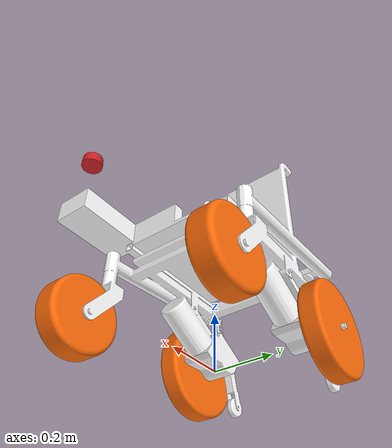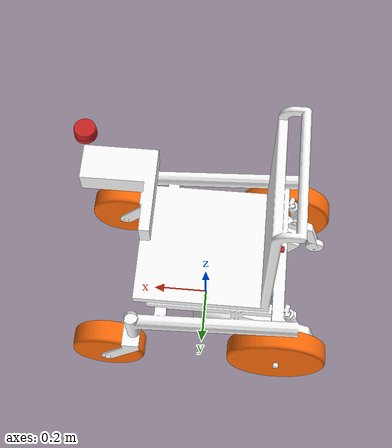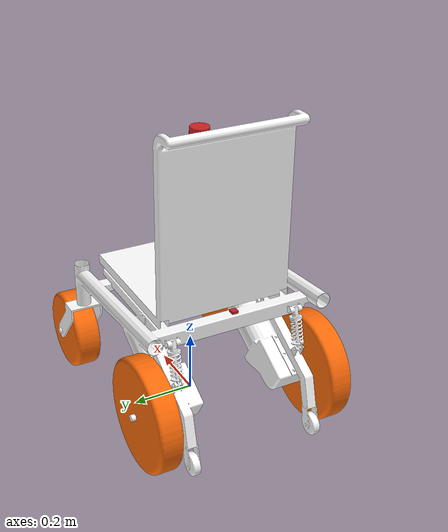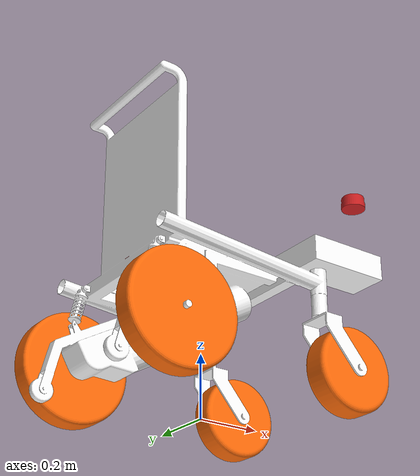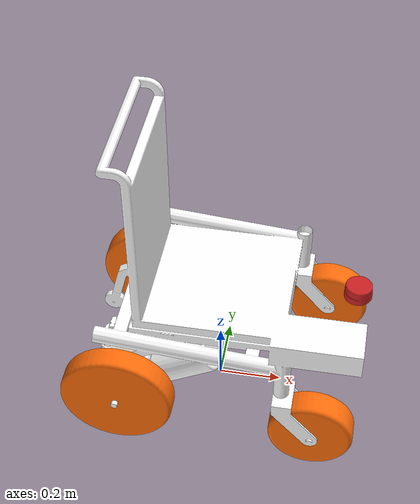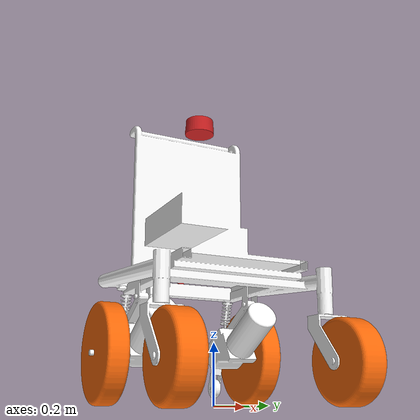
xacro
<?xml version="1.0" encoding="utf-8"?>
<robot name="wheelchair_des" xmlns:xacro="http://www.ros.org/wiki/xacro">

  <xacro:include filename="$(find wheelchair_des)/urdf/wheelchair_materials.xacro"/>

  <link name="base_footprint">
  </link>

  <link
    name="base_link">
    <inertial>
      <origin
        xyz="-0.080987486271254 -0.0296596801365287 0.0111666325817064"
        rpy="0 0 0" />
      <mass
        value="25.0244128773916" />
      <inertia
        ixx="0.471634336298249"
        ixy="0.00824343931442097"
        ixz="-0.0193729845601956"
        iyy="0.44356953512133"
        iyz="3.60464949398891E-06"
        izz="0.497492570615017" />
    </inertial>
    <visual>
      <origin
        xyz="0 0 0"
        rpy="0 0 0" />
      <geometry>
        <mesh
          filename="package://wheelchair_des/meshes/base_link.STL" />
      </geometry>
      <material
        name="white"/>
    </visual>
    <collision>
      <origin
        xyz="0 0 0"
        rpy="0 0 0" />
      <geometry>
        <mesh
          filename="package://wheelchair_des/meshes/base_link.STL" />
      </geometry>
    </collision>
  </link>

  <joint
    name="base_joint"
    type="fixed">
    <origin
      xyz="0 0 0.43240025653114"
      rpy="0 0 0" />
    <parent
      link="base_footprint" />
    <child
      link="base_link" />
    <axis
      xyz="0 0 0" />
  </joint>

  <link
    name="caster_left_link">
    <inertial>
      <origin
        xyz="0 -0.0599999999999999 0"
        rpy="0 0 0" />
      <mass
        value="4.40934690008729" />
      <inertia
        ixx="0.0210319896084761"
        ixy="1.24964759959585E-34"
        ixz="-5.70593071526157E-24"
        iyy="0.0368982021708161"
        iyz="2.35816819395541E-19"
        izz="0.0210319896084761" />
    </inertial>
    <visual>
      <origin
        xyz="0 0 0"
        rpy="0 0 0" />
      <geometry>
        <mesh
          filename="package://wheelchair_des/meshes/caster_left_link.STL" />
      </geometry>
      <material
        name="orange"/>
    </visual>
    <collision>
      <origin
        xyz="0 0 0"
        rpy="0 0 0" />
      <geometry>
        <mesh
          filename="package://wheelchair_des/meshes/caster_left_link.STL" />
      </geometry>
    </collision>
  </link>

  <joint
    name="caster_left_joint"
    type="continuous">
    <origin
      xyz="0.32884 0.33655 -0.3024"
      rpy="0 0 0" />
    <parent
      link="base_link" />
    <child
      link="caster_left_link" />
    <axis
      xyz="0 1 0" />
  </joint>

  <link
    name="caster_right_link">
    <inertial>
      <origin
        xyz="0 0.06 0"
        rpy="0 0 0" />
      <mass
        value="4.40934690008729" />
      <inertia
        ixx="0.0210319896084761"
        ixy="2.11758236813575E-20"
        ixz="-8.18747255346068E-24"
        iyy="0.0368982021708161"
        iyz="2.37011509461079E-19"
        izz="0.0210319896084761" />
    </inertial>
    <visual>
      <origin
        xyz="0 0 0"
        rpy="0 0 0" />
      <geometry>
        <mesh
          filename="package://wheelchair_des/meshes/caster_right_link.STL" />
      </geometry>
      <material
        name="orange"/>
    </visual>
    <collision>
      <origin
        xyz="0 0 0"
        rpy="0 0 0" />
      <geometry>
        <mesh
          filename="package://wheelchair_des/meshes/caster_right_link.STL" />
      </geometry>
    </collision>
  </link>

  <joint
    name="caster_right_joint"
    type="continuous">
    <origin
      xyz="0.32884 -0.33655 -0.3024"
      rpy="0 0 0" />
    <parent
      link="base_link" />
    <child
      link="caster_right_link" />
    <axis
      xyz="0 1 0" />
  </joint>

  <link
    name="wheel_left_link">
    <inertial>
      <origin
        xyz="0 -0.0515 0"
        rpy="0 0 0" />
      <mass
        value="7.16080210982417" />
      <inertia
        ixx="0.0580966446914578"
        ixy="4.23516473627149E-19"
        ixz="4.06548409937926E-23"
        iyy="0.109587758725363"
        iyz="-1.07273615672581E-18"
        izz="0.0580966446914578" />
    </inertial>
    <visual>
      <origin
        xyz="0 0 0"
        rpy="0 0 0" />
      <geometry>
        <mesh
          filename="package://wheelchair_des/meshes/wheel_left_link.STL" />
      </geometry>
      <material
        name="orange"/>
    </visual>
    <collision>
      <origin
        xyz="0 0 0"
        rpy="0 0 0" />
      <geometry>
        <mesh
          filename="package://wheelchair_des/meshes/wheel_left_link.STL" />
      </geometry>
    </collision>
  </link>

  <joint
    name="wheel_left_joint"
    type="continuous">
    <origin
      xyz="-0.27524 0.33475 -0.2569"
      rpy="0 0 0" />
    <parent
      link="base_link" />
    <child
      link="wheel_left_link" />
    <axis
      xyz="0 1 0" />
  </joint>

  <link
    name="wheel_right_link">
    <inertial>
      <origin
        xyz="-1.73472347597681E-18 0.0515 0"
        rpy="0 0 0" />
      <mass
        value="7.16080210982418" />
      <inertia
        ixx="0.0580966446914578"
        ixy="2.11758236813575E-19"
        ixz="4.06548409937907E-23"
        iyy="0.109587758725363"
        iyz="-1.07273719070158E-18"
        izz="0.0580966446914578" />
    </inertial>
    <visual>
      <origin
        xyz="0 0 0"
        rpy="0 0 0" />
      <geometry>
        <mesh
          filename="package://wheelchair_des/meshes/wheel_right_link.STL" />
      </geometry>
      <material
        name="orange"/>
    </visual>
    <collision>
      <origin
        xyz="0 0 0"
        rpy="0 0 0" />
      <geometry>
        <mesh
          filename="package://wheelchair_des/meshes/wheel_right_link.STL" />
      </geometry>
    </collision>
  </link>

  <joint
    name="wheel_right_joint"
    type="continuous">
    <origin
      xyz="-0.27524 -0.33525 -0.2569"
      rpy="0 0 0" />
    <parent
      link="base_link" />
    <child
      link="wheel_right_link" />
    <axis
      xyz="0 1 0" />
  </joint>

  <link
    name="base_scan">
    <inertial>
      <origin
        xyz="0 6.93889390390723E-18 0.00122854280541004"
        rpy="0 0 0" />
      <mass
        value="0.173952291044052" />
      <inertia
        ixx="8.31356173880308E-05"
        ixy="2.28999336772898E-26"
        ixz="0"
        iyy="8.31356173880308E-05"
        iyz="1.14659736808138E-21"
        izz="0.000118430701922264" />
    </inertial>
    <visual>
      <origin
        xyz="0 0 0"
        rpy="0 0 0" />
      <geometry>
        <mesh
          filename="package://wheelchair_des/meshes/base_scan.STL" />
      </geometry>
      <material
        name="red"/>
    </visual>
    <collision>
      <origin
        xyz="0 0 0"
        rpy="0 0 0" />
      <geometry>
        <mesh
          filename="package://wheelchair_des/meshes/base_scan.STL" />
      </geometry>
    </collision>
  </link>

  <joint
    name="scan_joint"
    type="fixed">
    <origin
      xyz="0.4188 -0.25 0.295"
      rpy="0 0 3.14" />
    <parent
      link="base_link" />
    <child
      link="base_scan" />
    <axis
      xyz="0 0 0" />
  </joint>

  <link
    name="imu_link">
    <inertial>
      <origin
        xyz="3.46944695195361E-18 2.77555756156289E-17 -0.004"
        rpy="0 0 0" />
      <mass
        value="0.00320000000000001" />
      <inertia
        ixx="1.23733333333334E-07"
        ixy="-1.19248121757618E-23"
        ixz="-5.05085746447727E-25"
        iyy="1.23733333333334E-07"
        iyz="-4.2898617694675E-40"
        izz="2.13333333333334E-07" />
    </inertial>
    <visual>
      <origin
        xyz="0 0 0"
        rpy="0 0 0" />
      <geometry>
        <mesh
          filename="package://wheelchair_des/meshes/imu_link.STL" />
      </geometry>
      <material
        name="red"/>
    </visual>
    <collision>
      <origin
        xyz="0 0 0"
        rpy="0 0 0" />
      <geometry>
        <mesh
          filename="package://wheelchair_des/meshes/imu_link.STL" />
      </geometry>
    </collision>
  </link>

  <joint
    name="imu_joint"
    type="fixed">
    <origin
      xyz="-0.26076 -0.01 0.0069127"
      rpy="0 0 0" />
    <parent
      link="base_link" />
    <child
      link="imu_link" />
    <axis
      xyz="0 0 0" />
  </joint>
</robot>

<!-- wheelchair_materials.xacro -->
<robot>
  <material name="black">
    <color rgba="0.0 0.0 0.0 1.0"/>
  </material>
  <material name="blue">
    <color rgba="0.203125 0.23828125 0.28515625 1.0"/>
  </material>
  <material name="green">
    <color rgba="0.0 0.8 0.0 1.0"/>
  </material>
  <material name="grey">
    <color rgba="0.2 0.2 0.2 1.0"/>
  </material>
  <material name="orange">
    <color rgba="1.0 0.423529411765 0.0392156862745 1.0"/>
  </material>
  <material name="brown">
    <color rgba="0.870588235294 0.811764705882 0.764705882353 1.0"/>
  </material>
  <material name="red">
    <color rgba="0.80078125 0.12890625 0.1328125 1.0"/>
  </material>
  <material name="white">
    <color rgba="1.0 1.0 1.0 1.0"/>
  </material>
</robot>
